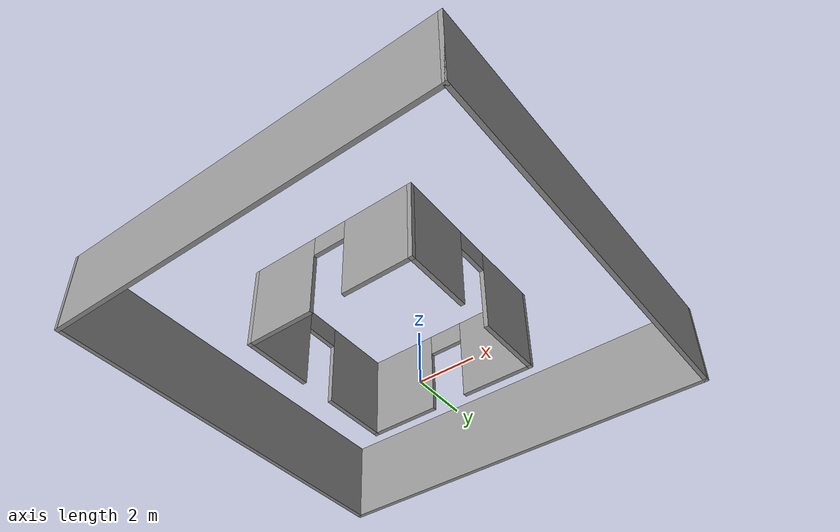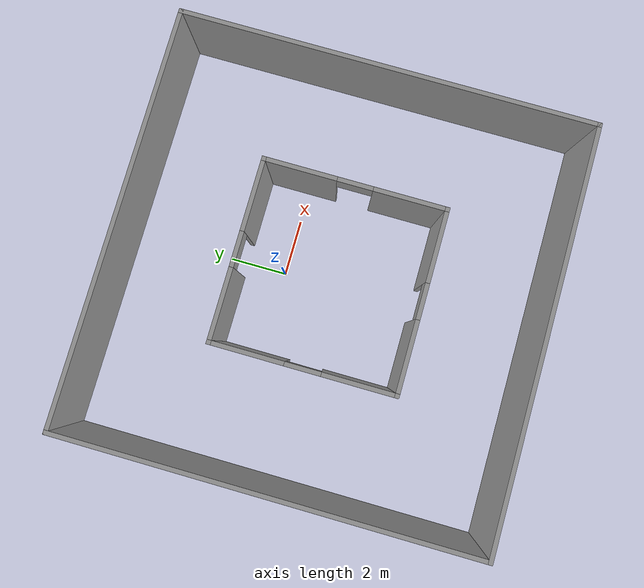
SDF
<?xml version='1.0'?>
<sdf version='1.7'>
  <model name='nesting_room'>
    <pose>0.205764 -1.58818 0 0 -0 0</pose>
    <link name='Wall_10'>
      <pose>-0.115764 -3.05882 0 0 -0 0</pose>
      <visual name='Wall_10_Visual_0'>
        <pose>-1.7875 0 1.5 0 -0 0</pose>
        <geometry>
          <box>
            <size>2.375 0.15 3</size>
          </box>
        </geometry>
        <material>
          <script>
            <uri>file://media/materials/scripts/gazebo.material</uri>
            <name>Gazebo/Grey</name>
          </script>
          <ambient>1 1 1 1</ambient>
        </material>
        <meta>
          <layer>0</layer>
        </meta>
      </visual>
      <collision name='Wall_10_Collision_0'>
        <geometry>
          <box>
            <size>2.375 0.15 3</size>
          </box>
        </geometry>
        <pose>-1.7875 0 1.5 0 -0 0</pose>
      </collision>
      <visual name='Wall_10_Visual_1'>
        <pose>1.7875 0 1.5 0 -0 0</pose>
        <geometry>
          <box>
            <size>2.375 0.15 3</size>
          </box>
        </geometry>
        <material>
          <script>
            <uri>file://media/materials/scripts/gazebo.material</uri>
            <name>Gazebo/Grey</name>
          </script>
          <ambient>1 1 1 1</ambient>
        </material>
        <meta>
          <layer>0</layer>
        </meta>
      </visual>
      <collision name='Wall_10_Collision_1'>
        <geometry>
          <box>
            <size>2.375 0.15 3</size>
          </box>
        </geometry>
        <pose>1.7875 0 1.5 0 -0 0</pose>
      </collision>
      <visual name='Wall_10_Visual_2'>
        <pose>0 0 2.625 0 -0 0</pose>
        <geometry>
          <box>
            <size>1.2 0.15 0.75</size>
          </box>
        </geometry>
        <material>
          <script>
            <uri>file://media/materials/scripts/gazebo.material</uri>
            <name>Gazebo/Grey</name>
          </script>
          <ambient>1 1 1 1</ambient>
        </material>
        <meta>
          <layer>0</layer>
        </meta>
      </visual>
      <collision name='Wall_10_Collision_2'>
        <geometry>
          <box>
            <size>1.2 0.15 0.75</size>
          </box>
        </geometry>
        <pose>0 0 2.625 0 -0 0</pose>
      </collision>
    </link>
    <link name='Wall_11'>
      <pose>2.93424 -0.008819 0 0 -0 1.5708</pose>
      <visual name='Wall_11_Visual_0'>
        <pose>-1.7875 0 1.5 0 -0 0</pose>
        <geometry>
          <box>
            <size>2.375 0.15 3</size>
          </box>
        </geometry>
        <material>
          <script>
            <uri>file://media/materials/scripts/gazebo.material</uri>
            <name>Gazebo/Grey</name>
          </script>
          <ambient>1 1 1 1</ambient>
        </material>
        <meta>
          <layer>0</layer>
        </meta>
      </visual>
      <collision name='Wall_11_Collision_0'>
        <geometry>
          <box>
            <size>2.375 0.15 3</size>
          </box>
        </geometry>
        <pose>-1.7875 0 1.5 0 -0 0</pose>
      </collision>
      <visual name='Wall_11_Visual_1'>
        <pose>1.7875 0 1.5 0 -0 0</pose>
        <geometry>
          <box>
            <size>2.375 0.15 3</size>
          </box>
        </geometry>
        <material>
          <script>
            <uri>file://media/materials/scripts/gazebo.material</uri>
            <name>Gazebo/Grey</name>
          </script>
          <ambient>1 1 1 1</ambient>
        </material>
        <meta>
          <layer>0</layer>
        </meta>
      </visual>
      <collision name='Wall_11_Collision_1'>
        <geometry>
          <box>
            <size>2.375 0.15 3</size>
          </box>
        </geometry>
        <pose>1.7875 0 1.5 0 -0 0</pose>
      </collision>
      <visual name='Wall_11_Visual_2'>
        <pose>0 0 2.625 0 -0 0</pose>
        <geometry>
          <box>
            <size>1.2 0.15 0.75</size>
          </box>
        </geometry>
        <material>
          <script>
            <uri>file://media/materials/scripts/gazebo.material</uri>
            <name>Gazebo/Grey</name>
          </script>
          <ambient>1 1 1 1</ambient>
        </material>
        <meta>
          <layer>0</layer>
        </meta>
      </visual>
      <collision name='Wall_11_Collision_2'>
        <geometry>
          <box>
            <size>1.2 0.15 0.75</size>
          </box>
        </geometry>
        <pose>0 0 2.625 0 -0 0</pose>
      </collision>
    </link>
    <link name='Wall_13'>
      <collision name='Wall_13_Collision'>
        <geometry>
          <box>
            <size>14.3 0.15 3</size>
          </box>
        </geometry>
        <pose>0 0 1.5 0 -0 0</pose>
      </collision>
      <visual name='Wall_13_Visual'>
        <pose>0 0 1.5 0 -0 0</pose>
        <geometry>
          <box>
            <size>14.3 0.15 3</size>
          </box>
        </geometry>
        <material>
          <script>
            <uri>file://media/materials/scripts/gazebo.material</uri>
            <name>Gazebo/Grey</name>
          </script>
          <ambient>1 1 1 1</ambient>
        </material>
        <meta>
          <layer>0</layer>
        </meta>
      </visual>
      <pose>-7.19076 -0.00882 0 0 -0 -1.5708</pose>
    </link>
    <link name='Wall_14'>
      <collision name='Wall_14_Collision'>
        <geometry>
          <box>
            <size>14.3 0.15 3</size>
          </box>
        </geometry>
        <pose>0 0 1.5 0 -0 0</pose>
      </collision>
      <visual name='Wall_14_Visual'>
        <pose>0 0 1.5 0 -0 0</pose>
        <geometry>
          <box>
            <size>14.3 0.15 3</size>
          </box>
        </geometry>
        <material>
          <script>
            <uri>file://media/materials/scripts/gazebo.material</uri>
            <name>Gazebo/Grey</name>
          </script>
          <ambient>1 1 1 1</ambient>
        </material>
        <meta>
          <layer>0</layer>
        </meta>
      </visual>
      <pose>-0.11576 -7.08382 0 0 -0 0</pose>
    </link>
    <link name='Wall_15'>
      <collision name='Wall_15_Collision'>
        <geometry>
          <box>
            <size>14.3 0.15 3</size>
          </box>
        </geometry>
        <pose>0 0 1.5 0 -0 0</pose>
      </collision>
      <visual name='Wall_15_Visual'>
        <pose>0 0 1.5 0 -0 0</pose>
        <geometry>
          <box>
            <size>14.3 0.15 3</size>
          </box>
        </geometry>
        <material>
          <script>
            <uri>file://media/materials/scripts/gazebo.material</uri>
            <name>Gazebo/Grey</name>
          </script>
          <ambient>1 1 1 1</ambient>
        </material>
        <meta>
          <layer>0</layer>
        </meta>
      </visual>
      <pose>6.95924 -0.00882 0 0 -0 1.5708</pose>
    </link>
    <link name='Wall_16'>
      <collision name='Wall_16_Collision'>
        <geometry>
          <box>
            <size>14.3 0.15 3</size>
          </box>
        </geometry>
        <pose>0 0 1.5 0 -0 0</pose>
      </collision>
      <visual name='Wall_16_Visual'>
        <pose>0 0 1.5 0 -0 0</pose>
        <geometry>
          <box>
            <size>14.3 0.15 3</size>
          </box>
        </geometry>
        <material>
          <script>
            <uri>file://media/materials/scripts/gazebo.material</uri>
            <name>Gazebo/Grey</name>
          </script>
          <ambient>1 1 1 1</ambient>
        </material>
        <meta>
          <layer>0</layer>
        </meta>
      </visual>
      <pose>-0.11576 7.06618 0 0 -0 3.14159</pose>
    </link>
    <link name='Wall_6'>
      <pose>-0.115764 3.04118 0 0 -0 3.14159</pose>
      <visual name='Wall_6_Visual_0'>
        <pose>-1.7875 0 1.5 0 -0 0</pose>
        <geometry>
          <box>
            <size>2.375 0.15 3</size>
          </box>
        </geometry>
        <material>
          <script>
            <uri>file://media/materials/scripts/gazebo.material</uri>
            <name>Gazebo/Grey</name>
          </script>
          <ambient>1 1 1 1</ambient>
        </material>
        <meta>
          <layer>0</layer>
        </meta>
      </visual>
      <collision name='Wall_6_Collision_0'>
        <geometry>
          <box>
            <size>2.375 0.15 3</size>
          </box>
        </geometry>
        <pose>-1.7875 0 1.5 0 -0 0</pose>
      </collision>
      <visual name='Wall_6_Visual_1'>
        <pose>1.7875 0 1.5 0 -0 0</pose>
        <geometry>
          <box>
            <size>2.375 0.15 3</size>
          </box>
        </geometry>
        <material>
          <script>
            <uri>file://media/materials/scripts/gazebo.material</uri>
            <name>Gazebo/Grey</name>
          </script>
          <ambient>1 1 1 1</ambient>
        </material>
        <meta>
          <layer>0</layer>
        </meta>
      </visual>
      <collision name='Wall_6_Collision_1'>
        <geometry>
          <box>
            <size>2.375 0.15 3</size>
          </box>
        </geometry>
        <pose>1.7875 0 1.5 0 -0 0</pose>
      </collision>
      <visual name='Wall_6_Visual_2'>
        <pose>0 0 2.625 0 -0 0</pose>
        <geometry>
          <box>
            <size>1.2 0.15 0.75</size>
          </box>
        </geometry>
        <material>
          <script>
            <uri>file://media/materials/scripts/gazebo.material</uri>
            <name>Gazebo/Grey</name>
          </script>
          <ambient>1 1 1 1</ambient>
        </material>
        <meta>
          <layer>0</layer>
        </meta>
      </visual>
      <collision name='Wall_6_Collision_2'>
        <geometry>
          <box>
            <size>1.2 0.15 0.75</size>
          </box>
        </geometry>
        <pose>0 0 2.625 0 -0 0</pose>
      </collision>
    </link>
    <link name='Wall_9'>
      <pose>-3.16576 -0.008819 0 0 -0 -1.5708</pose>
      <visual name='Wall_9_Visual_0'>
        <pose>-1.7875 0 1.5 0 -0 0</pose>
        <geometry>
          <box>
            <size>2.375 0.15 3</size>
          </box>
        </geometry>
        <material>
          <script>
            <uri>file://media/materials/scripts/gazebo.material</uri>
            <name>Gazebo/Grey</name>
          </script>
          <ambient>1 1 1 1</ambient>
        </material>
        <meta>
          <layer>0</layer>
        </meta>
      </visual>
      <collision name='Wall_9_Collision_0'>
        <geometry>
          <box>
            <size>2.375 0.15 3</size>
          </box>
        </geometry>
        <pose>-1.7875 0 1.5 0 -0 0</pose>
      </collision>
      <visual name='Wall_9_Visual_1'>
        <pose>1.7875 0 1.5 0 -0 0</pose>
        <geometry>
          <box>
            <size>2.375 0.15 3</size>
          </box>
        </geometry>
        <material>
          <script>
            <uri>file://media/materials/scripts/gazebo.material</uri>
            <name>Gazebo/Grey</name>
          </script>
          <ambient>1 1 1 1</ambient>
        </material>
        <meta>
          <layer>0</layer>
        </meta>
      </visual>
      <collision name='Wall_9_Collision_1'>
        <geometry>
          <box>
            <size>2.375 0.15 3</size>
          </box>
        </geometry>
        <pose>1.7875 0 1.5 0 -0 0</pose>
      </collision>
      <visual name='Wall_9_Visual_2'>
        <pose>0 0 2.625 0 -0 0</pose>
        <geometry>
          <box>
            <size>1.2 0.15 0.75</size>
          </box>
        </geometry>
        <material>
          <script>
            <uri>file://media/materials/scripts/gazebo.material</uri>
            <name>Gazebo/Grey</name>
          </script>
          <ambient>1 1 1 1</ambient>
        </material>
        <meta>
          <layer>0</layer>
        </meta>
      </visual>
      <collision name='Wall_9_Collision_2'>
        <geometry>
          <box>
            <size>1.2 0.15 0.75</size>
          </box>
        </geometry>
        <pose>0 0 2.625 0 -0 0</pose>
      </collision>
    </link>
    <link name='Corner_SE'>
      <pose>2.93424 -3.05882 0 0 -0 0</pose>
      <visual name='Corner_SE_Visual'>
        <pose>0 0 1.5 0 -0 0</pose>
        <geometry>
          <box>
            <size>0.15 0.15 3</size>
          </box>
        </geometry>
        <material>
          <script>
            <uri>file://media/materials/scripts/gazebo.material</uri>
            <name>Gazebo/Grey</name>
          </script>
          <ambient>1 1 1 1</ambient>
        </material>
        <meta>
          <layer>0</layer>
        </meta>
      </visual>
      <collision name='Corner_SE_Collision'>
        <geometry>
          <box>
            <size>0.15 0.15 3</size>
          </box>
        </geometry>
        <pose>0 0 1.5 0 -0 0</pose>
      </collision>
    </link>
    <link name='Corner_SW'>
      <pose>-3.16576 -3.05882 0 0 -0 0</pose>
      <visual name='Corner_SW_Visual'>
        <pose>0 0 1.5 0 -0 0</pose>
        <geometry>
          <box>
            <size>0.15 0.15 3</size>
          </box>
        </geometry>
        <material>
          <script>
            <uri>file://media/materials/scripts/gazebo.material</uri>
            <name>Gazebo/Grey</name>
          </script>
          <ambient>1 1 1 1</ambient>
        </material>
        <meta>
          <layer>0</layer>
        </meta>
      </visual>
      <collision name='Corner_SW_Collision'>
        <geometry>
          <box>
            <size>0.15 0.15 3</size>
          </box>
        </geometry>
        <pose>0 0 1.5 0 -0 0</pose>
      </collision>
    </link>
    <link name='Corner_NE'>
      <pose>2.93424 3.04118 0 0 -0 0</pose>
      <visual name='Corner_NE_Visual'>
        <pose>0 0 1.5 0 -0 0</pose>
        <geometry>
          <box>
            <size>0.15 0.15 3</size>
          </box>
        </geometry>
        <material>
          <script>
            <uri>file://media/materials/scripts/gazebo.material</uri>
            <name>Gazebo/Grey</name>
          </script>
          <ambient>1 1 1 1</ambient>
        </material>
        <meta>
          <layer>0</layer>
        </meta>
      </visual>
      <collision name='Corner_NE_Collision'>
        <geometry>
          <box>
            <size>0.15 0.15 3</size>
          </box>
        </geometry>
        <pose>0 0 1.5 0 -0 0</pose>
      </collision>
    </link>
    <link name='Corner_NW'>
      <pose>-3.16576 3.04118 0 0 -0 0</pose>
      <visual name='Corner_NW_Visual'>
        <pose>0 0 1.5 0 -0 0</pose>
        <geometry>
          <box>
            <size>0.15 0.15 3</size>
          </box>
        </geometry>
        <material>
          <script>
            <uri>file://media/materials/scripts/gazebo.material</uri>
            <name>Gazebo/Grey</name>
          </script>
          <ambient>1 1 1 1</ambient>
        </material>
        <meta>
          <layer>0</layer>
        </meta>
      </visual>
      <collision name='Corner_NW_Collision'>
        <geometry>
          <box>
            <size>0.15 0.15 3</size>
          </box>
        </geometry>
        <pose>0 0 1.5 0 -0 0</pose>
      </collision>
    </link>
    <static>1</static>
  </model>
</sdf>
